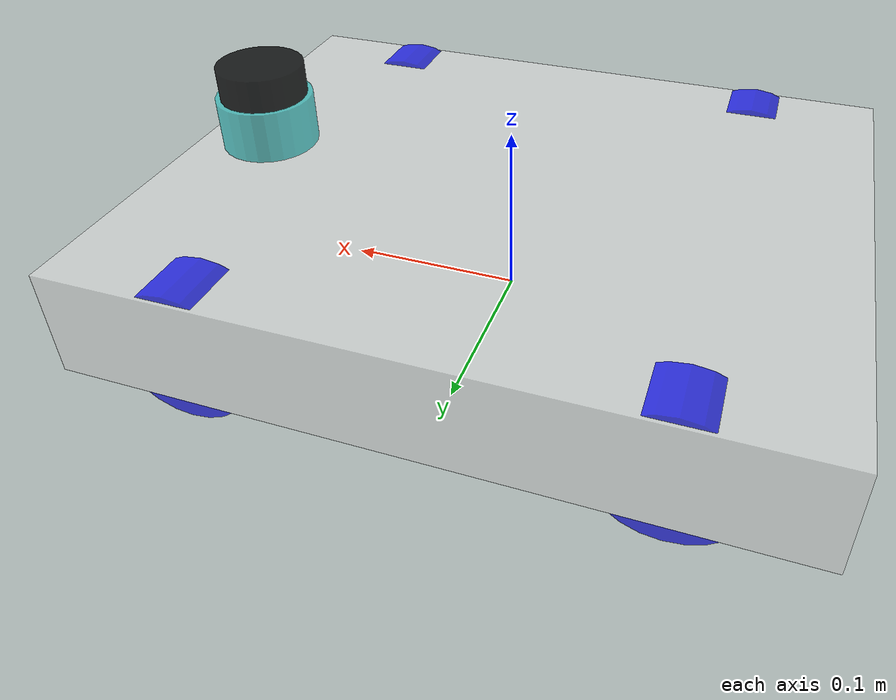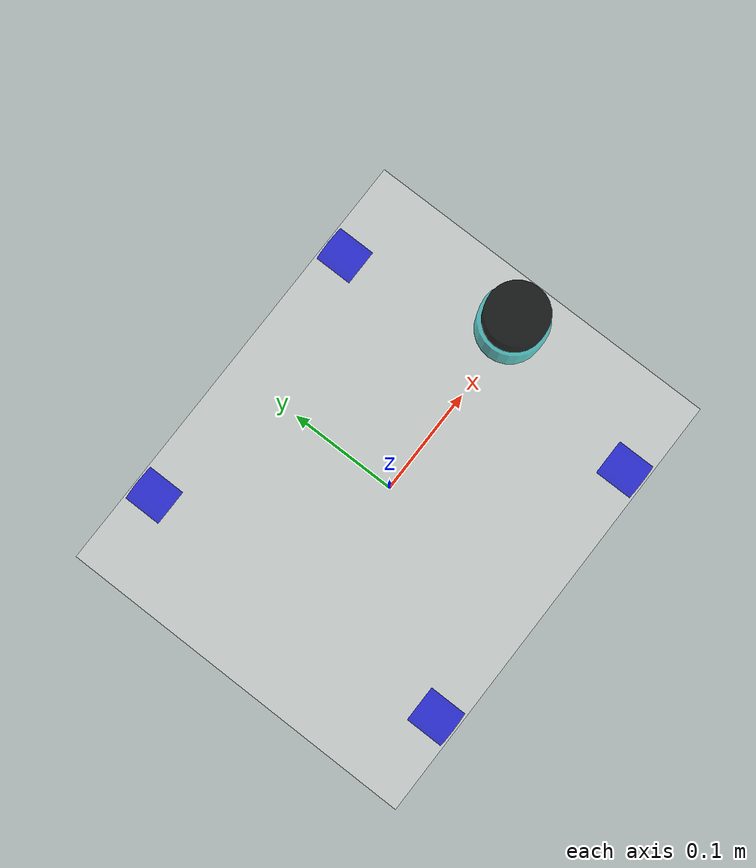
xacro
<?xml version="1.0"?>
<robot xmlns:xacro="http://www.ros.org/wiki/xacro" name="mcnm_robot_assembly">
    <!-- body部分——base_link -->
    <xacro:include filename="$(find mcnm_robot_description)/urdf/mcnm_robot/base.urdf.xacro"/>
    <!-- 传感器部分 -->
    <xacro:include filename="$(find mcnm_robot_description)/urdf/mcnm_robot/sensor/laser.urdf.xacro"/>
    <!-- 执行器部分 -->
    <xacro:include filename="$(find mcnm_robot_description)/urdf/mcnm_robot/actuator/wheel.urdf.xacro"/>

    <!-- 调用各个宏 -->
    <xacro:base_xacro length="0.385" width="0.31" height="0.061"/>
    <xacro:laser_xacro xyz = "0.152 0.0 0.0455" />

    <xacro:wheel_xacro wheel_name = "M1" xyz = "0.119 0.137 -0.004" />
    <xacro:wheel_xacro wheel_name = "M2" xyz = "-0.119 0.137 -0.004" />
    <xacro:wheel_xacro wheel_name = "M3" xyz = "0.119 -0.137 -0.004" />
    <xacro:wheel_xacro wheel_name = "M4" xyz = "-0.119 -0.137 -0.004" />

</robot>

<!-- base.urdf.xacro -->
<robot xmlns:xacro="http://www.ros.org/wiki/xacro" >
    <!-- 引入质量和惯性参数 -->
    <xacro:include filename="$(find mcnm_robot_description)/urdf/mcnm_robot/common_inertia.xacro" />

    <xacro:macro name="base_xacro" params="length width height">
        <!-- 声明 base_footprint 模块 -->
        <link name="base_footprint" />
        <!-- 声明 base_link 模块 -->
        <link name="base_link">
            <visual>
                <origin xyz="0 0 0" rpy="0 0 0" />
                <geometry>
                    <box size="${length} ${width} ${height}" />
                </geometry>
                <material name="white">
                    <color rgba="1.0 1.0 1.0 0.5" />
                </material>
            </visual>
            <!-- 碰撞体属性 -->
            <collision>
                <origin xyz="0 0 0" rpy="0 0 0" />
                <geometry>
                    <box size="${length} ${width+0.11} ${height}" />
                </geometry>
                <material name="white">
                    <color rgba="0.7 0.7 0.7 0.3" />
                </material>
            </collision>
            <!-- 惯性和质量属性 -->
            <xacro:box_inertia m = "3.0" l = "${length}" w = "${width}" h = "${height}" />
        </link>

        <joint name="base_link_joint" type="fixed">
            <parent link="base_footprint" />
            <child link="base_link" />
            <origin xyz="0 0 0.041" rpy="0 0 0" />
        </joint>

    </xacro:macro>
</robot>

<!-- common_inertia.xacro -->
<robot xmlns:xacro="http://ros.org/wiki/xacro">

    <!-- 长方体惯性矩阵宏 -->
    <!-- 参数: m=质量, l=长(x)， w=宽(y), h=高(z) -->
    <xacro:macro name="box_inertia" params="m l w h">
        <inertial>
            <mass value="${m}" />
            <inertia ixx="${(m/12) * (h*h + w*w)}" ixy="0.0" ixz="0.0"
                     iyy="${(m/12) * (l*l + h*h)}" iyz="0.0"
                     izz="${(m/12) * (l*l + w*w)}" />
        </inertial>
    </xacro:macro>

    <!-- 圆柱体惯性矩阵宏 -->
    <!-- 参数: m=质量, r=半径, h=高度(z轴方向) -->
    <!-- 注意: 这是圆柱体沿Z轴放置的情况 -->
    <xacro:macro name="cylinder_inertia" params="m r h">
        <inertial>
            <mass value="${m}" />
            <inertia ixx="${(m/12) * (3*r*r + h*h)}" ixy="0" ixz="0"
                     iyy="${(m/12) * (3*r*r + h*h)}" iyz="0"
                     izz="${(m/2) * (r*r)}" />
        </inertial>
    </xacro:macro>

    <!-- 球体惯性矩阵宏 -->
    <!-- 参数: m=质量, r=半径 -->
    <xacro:macro name="sphere_inertia" params="m r">
        <inertial>
            <mass value="${m}" />
            <inertia ixx="${(2/5) * m * (r*r)}" ixy="0.0" ixz="0.0"
                     iyy="${(2/5) * m * (r*r)}" iyz="0.0"
                     izz="${(2/5) * m * (r*r)}" />
        </inertial>
    </xacro:macro>

</robot>

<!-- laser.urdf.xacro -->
<robot xmlns:xacro="http://www.ros.org/wiki/xacro">
    <!-- 引入质量和惯性参数 -->
    <xacro:include filename="$(find mcnm_robot_description)/urdf/mcnm_robot/common_inertia.xacro" />

    <xacro:macro name="laser_xacro" params="xyz">
        <!-- 声明 激光雷达laser 模块 -->
        <link name="laser_link">
            <visual>
                <origin xyz="0 0 0" rpy="0 0 0" />
                <geometry>
                    <cylinder radius="0.025" length="0.019" />
                </geometry>
                <material name="black">
                    <color rgba="0.0 0.0 0.0 0.8" />
                </material>
            </visual>
            <!-- 碰撞属性 -->
            <collision>
                <origin xyz="0 0 0" rpy="0 0 0" />
                <geometry>
                    <cylinder radius="0.025" length="0.019" />
                </geometry>
                <material name="black">
                    <color rgba="0.0 0.0 0.0 0.6" />
                </material>
            </collision>
            <!-- 惯性和质量属性 -->
            <xacro:cylinder_inertia m = "0.05" r = "0.025" h = "0.019" />
        </link>
        <!-- 声明 laser支撑杆 模块 -->
        <link name="laser_support_link">
            <visual>
                <origin xyz="0 0 0" rpy="0 0 0" />
                <geometry>
                    <cylinder radius="0.028" length="0.03" />
                </geometry>
                <material name="cyan">
                    <color rgba="0.2 0.8 0.8 0.7" />
                </material>
            </visual>
            <!-- 碰撞属性 -->
            <collision>
                <origin xyz="0 0 0" rpy="0 0 0" />
                <geometry>
                    <cylinder radius="0.028" length="0.03" />
                </geometry>
                <material name="cyan">
                    <color rgba="0.2 0.8 0.8 0.3" />
                </material>
            </collision>
            <!-- 惯性和质量属性 -->
            <xacro:cylinder_inertia m = "0.05" r = "0.028" h = "0.03" />
        </link>
        <!-- 声明 laser支撑杆 和 激光雷达 的关节 -->
        <joint name="laser_joint" type="fixed">
            <parent link="laser_support_link" />
            <child link="laser_link" />
            <origin xyz="0 0 0.0245" rpy="0 0 0" />
        </joint>
        <joint name="laser_support_joint" type="fixed">
            <parent link="base_link" />
            <child link="laser_support_link" />
            <origin xyz="${xyz}" rpy="0 0 3.14159" />
            <!-- laser支撑杆坐标默认为0.13 0 0.055 -->
        </joint>

    </xacro:macro>
</robot>

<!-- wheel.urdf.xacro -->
<robot xmlns:xacro="http://www.ros.org/wiki/xacro">
    <!-- 引入质量和惯性参数 -->
    <xacro:include filename="$(find mcnm_robot_description)/urdf/mcnm_robot/common_inertia.xacro" />

    <!-- 声明 麦克纳姆轮 模块 -->
    <xacro:macro name="wheel_xacro" params="wheel_name xyz">
        <!-- 轮子可视化 -->
        <link name="${wheel_name}_link">
            <visual>
                <origin xyz="0 0 0" rpy="${pi/2} 0 0" />
                <geometry>
                    <cylinder radius="0.038" length="0.032"/>
                </geometry>
                <material name="blue">
                    <color rgba="0 0 1.0 0.7" />
                </material>
            </visual>
            <!-- 轮子碰撞属性 -->
            <collision>
                <origin xyz="0 0 0" rpy="${pi/2} 0 0" />
                <geometry>
                    <cylinder radius="0.038" length="0.032"/>
                </geometry>
            </collision>
            <!-- 惯性和质量属性 -->
            <xacro:cylinder_inertia m = "0.11" r = "0.038" h = "0.032" />
        </link>

        <!-- 轮子关节 -->
        <joint name="${wheel_name}_joint" type="continuous">
            <parent link="base_link" />
            <child link="${wheel_name}_link" />
            <origin xyz="${xyz}" rpy="0 0 3.14159" />
            <axis xyz="0 1 0" />
        </joint>

    </xacro:macro>
</robot>
